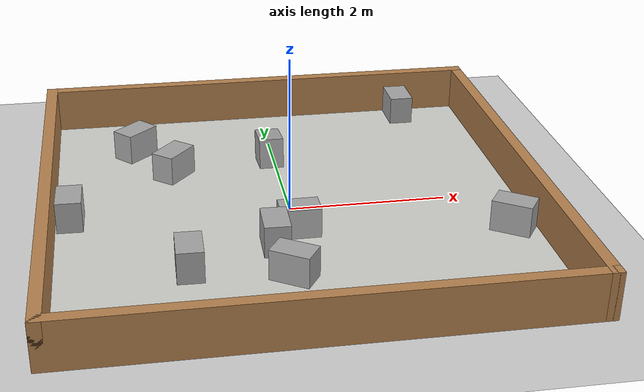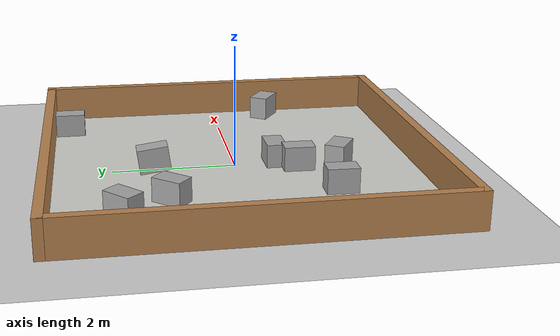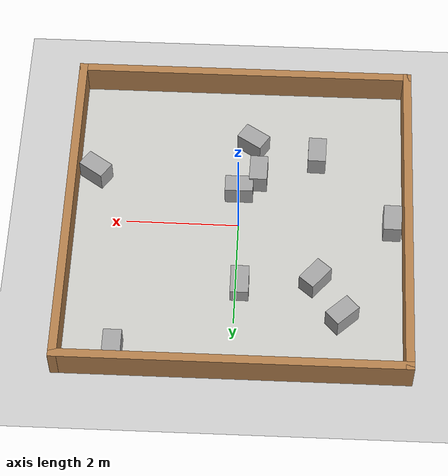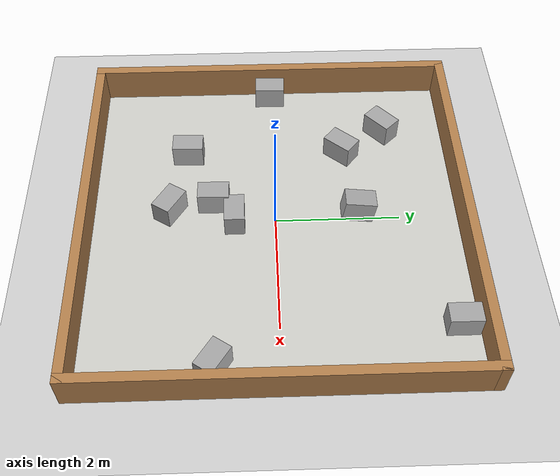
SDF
<sdf version="1.6">
 <world name="default">
  <light name="sun" type="directional">
   <pose>0 0 10 0 -0 0</pose>
   <diffuse>0.8 0.8 0.8 1</diffuse>
   <specular>0.2 0.2 0.2 1</specular>
   <attenuation>
    <range>1000</range>
    <constant>0.9</constant>
    <linear>0.01</linear>
    <quadratic>0.001</quadratic>
   </attenuation>
   <direction>-0.5 0.1 -0.9</direction>
  </light>
  <model name="ground_plane">
   <static>1</static>
   <link name="link">
    <collision name="collision">
     <geometry><plane><normal>0 0 1</normal><size>100 100</size></plane></geometry>
     <surface><friction><ode><mu>100</mu><mu2>50</mu2></ode></friction></surface>
    </collision>
    <visual name="visual">
     <cast_shadows>0</cast_shadows>
     <geometry><plane><normal>0 0 1</normal><size>100 100</size></plane></geometry>
     <material>
      <script><uri>model://media/materials/scripts/gazebo.material</uri><name>Gazebo/Grey</name></script>
     </material>
    </visual>
   </link>
  </model>
  <gravity>0 0 -9.8</gravity>
  <magnetic_field>6e-06 2.3e-05 -4.2e-05</magnetic_field>
  <atmosphere type="adiabatic"/>
  <physics name="default_physics" default="0" type="ode">
   <max_step_size>0.001</max_step_size>
   <real_time_factor>1</real_time_factor>
   <real_time_update_rate>1000</real_time_update_rate>
  </physics>
  <scene><ambient>0.4 0.4 0.4 1</ambient><background>0.7 0.7 0.7 1</background><shadows>1</shadows></scene>
  <spherical_coordinates>
   <surface_model>EARTH_WGS84</surface_model>
   <latitude_deg>0</latitude_deg>
   <longitude_deg>0</longitude_deg>
   <elevation>0</elevation>
   <heading_deg>0</heading_deg>
  </spherical_coordinates>
  <model name="box2">
   <pose>0.011398 -0.650571 0 0 0 -1.56396</pose>
   <static>1</static>
   <link name="body">
    <collision name="collision">
     <geometry><mesh><uri>model://box_2.dae</uri><scale>1 1 1</scale></mesh></geometry>
    </collision>
    <visual name="visual">
     <geometry><mesh><uri>model://box_2.dae</uri><scale>1 1 1</scale></mesh></geometry>
    </visual>
   </link>
  </model>
  <model name="box5_0_clone">
   <link name="body">
    <inertial>
     <mass>1</mass>
     <inertia><ixx>1</ixx><ixy>0</ixy><ixz>0</ixz><iyy>1</iyy><iyz>0</iyz><izz>1</izz></inertia>
    </inertial>
    <visual name="visual">
     <geometry><mesh><uri>model://box_blank.dae</uri><scale>1 1 1</scale></mesh></geometry>
     <material><shader type="vertex"><normal_map>__default__</normal_map></shader></material>
    </visual>
    <collision name="collision">
     <geometry><mesh><uri>model://box_10.dae</uri><scale>1 1 1</scale></mesh></geometry>
     <surface>
      <friction>
       <ode><mu>1</mu><mu2>1</mu2><fdir1>0 0 0</fdir1><slip1>0</slip1><slip2>0</slip2></ode>
       <torsional>
        <coefficient>1</coefficient>
        <patch_radius>0</patch_radius>
        <surface_radius>0</surface_radius>
        <use_patch_radius>1</use_patch_radius>
        <ode><slip>0</slip></ode>
       </torsional>
      </friction>
      <bounce><restitution_coefficient>0</restitution_coefficient><threshold>1e+06</threshold></bounce>
      <contact>
       <collide_without_contact>0</collide_without_contact>
       <collide_without_contact_bitmask>1</collide_without_contact_bitmask>
       <collide_bitmask>1</collide_bitmask>
       <ode>
        <soft_cfm>0</soft_cfm>
        <soft_erp>0.2</soft_erp>
        <kp>1e+13</kp>
        <kd>1</kd>
        <max_vel>0.01</max_vel>
        <min_depth>0</min_depth>
       </ode>
       <bullet>
        <split_impulse>1</split_impulse>
        <split_impulse_penetration_threshold>-0.01</split_impulse_penetration_threshold>
        <soft_cfm>0</soft_cfm>
        <soft_erp>0.2</soft_erp>
        <kp>1e+13</kp>
        <kd>1</kd>
       </bullet>
      </contact>
     </surface>
    </collision>
   </link>
   <static>1</static>
   <pose>-0.212435 -1.68754 0 0 -0 1</pose>
  </model>
  <model name="walls_0">
   <link name="Wall_0">
    <pose>0 -3 0 0 -0 0</pose>
    <visual name="Wall_0_Visual">
     <pose>0 0 0.3 0 -0 0</pose>
     <geometry><box><size>6.15 0.15 0.6</size></box></geometry>
     <material>
      <script><uri>file://media/materials/scripts/gazebo.material</uri><name>Gazebo/Wood</name></script>
      <ambient>1 1 1 1</ambient>
      <diffuse>1 1 1 1</diffuse>
      <specular>0.2 0.2 0.2 1</specular>
      <emissive>0 0 0 1</emissive>
     </material>
    </visual>
    <collision name="Wall_0_Collision">
     <pose>0 0 0.3 0 -0 0</pose>
     <geometry><box><size>6.15 0.15 0.6</size></box></geometry>
     <surface>
      <friction>
       <ode><mu>1</mu><mu2>1</mu2><fdir1>0 0 0</fdir1><slip1>0</slip1><slip2>0</slip2></ode>
       <torsional>
        <coefficient>1</coefficient>
        <patch_radius>0</patch_radius>
        <surface_radius>0</surface_radius>
        <use_patch_radius>1</use_patch_radius>
        <ode><slip>0</slip></ode>
       </torsional>
      </friction>
      <bounce><restitution_coefficient>0</restitution_coefficient><threshold>1e+06</threshold></bounce>
      <contact>
       <collide_without_contact>0</collide_without_contact>
       <collide_without_contact_bitmask>1</collide_without_contact_bitmask>
       <collide_bitmask>1</collide_bitmask>
       <ode>
        <soft_cfm>0</soft_cfm>
        <soft_erp>0.2</soft_erp>
        <kp>1e+13</kp>
        <kd>1</kd>
        <max_vel>0.01</max_vel>
        <min_depth>0</min_depth>
       </ode>
       <bullet>
        <split_impulse>1</split_impulse>
        <split_impulse_penetration_threshold>-0.01</split_impulse_penetration_threshold>
        <soft_cfm>0</soft_cfm>
        <soft_erp>0.2</soft_erp>
        <kp>1e+13</kp>
        <kd>1</kd>
       </bullet>
      </contact>
     </surface>
    </collision>
   </link>
   <link name="Wall_3">
    <pose>3 0 0 0 -0 1.5708</pose>
    <visual name="Wall_3_Visual">
     <pose>0 0 0.3 0 -0 0</pose>
     <geometry><box><size>6.15 0.15 0.6</size></box></geometry>
     <material>
      <script><uri>file://media/materials/scripts/gazebo.material</uri><name>Gazebo/Wood</name></script>
      <ambient>1 1 1 1</ambient>
      <diffuse>1 1 1 1</diffuse>
      <specular>0.2 0.2 0.2 1</specular>
      <emissive>0 0 0 1</emissive>
     </material>
    </visual>
    <collision name="Wall_3_Collision">
     <pose>0 0 0.3 0 -0 0</pose>
     <geometry><box><size>6.15 0.15 0.6</size></box></geometry>
     <surface>
      <friction>
       <ode><mu>1</mu><mu2>1</mu2><fdir1>0 0 0</fdir1><slip1>0</slip1><slip2>0</slip2></ode>
       <torsional>
        <coefficient>1</coefficient>
        <patch_radius>0</patch_radius>
        <surface_radius>0</surface_radius>
        <use_patch_radius>1</use_patch_radius>
        <ode><slip>0</slip></ode>
       </torsional>
      </friction>
      <bounce><restitution_coefficient>0</restitution_coefficient><threshold>1e+06</threshold></bounce>
      <contact>
       <collide_without_contact>0</collide_without_contact>
       <collide_without_contact_bitmask>1</collide_without_contact_bitmask>
       <collide_bitmask>1</collide_bitmask>
       <ode>
        <soft_cfm>0</soft_cfm>
        <soft_erp>0.2</soft_erp>
        <kp>1e+13</kp>
        <kd>1</kd>
        <max_vel>0.01</max_vel>
        <min_depth>0</min_depth>
       </ode>
       <bullet>
        <split_impulse>1</split_impulse>
        <split_impulse_penetration_threshold>-0.01</split_impulse_penetration_threshold>
        <soft_cfm>0</soft_cfm>
        <soft_erp>0.2</soft_erp>
        <kp>1e+13</kp>
        <kd>1</kd>
       </bullet>
      </contact>
     </surface>
    </collision>
   </link>
   <link name="Wall_5">
    <pose>0 3 0 0 -0 3.14159</pose>
    <visual name="Wall_5_Visual">
     <pose>0 0 0.3 0 -0 0</pose>
     <geometry><box><size>6.15 0.15 0.6</size></box></geometry>
     <material>
      <script><uri>file://media/materials/scripts/gazebo.material</uri><name>Gazebo/Wood</name></script>
      <ambient>1 1 1 1</ambient>
      <diffuse>1 1 1 1</diffuse>
      <specular>0.2 0.2 0.2 1</specular>
      <emissive>0 0 0 1</emissive>
     </material>
    </visual>
    <collision name="Wall_5_Collision">
     <pose>0 0 0.3 0 -0 0</pose>
     <geometry><box><size>6.15 0.15 0.6</size></box></geometry>
     <surface>
      <friction>
       <ode><mu>1</mu><mu2>1</mu2><fdir1>0 0 0</fdir1><slip1>0</slip1><slip2>0</slip2></ode>
       <torsional>
        <coefficient>1</coefficient>
        <patch_radius>0</patch_radius>
        <surface_radius>0</surface_radius>
        <use_patch_radius>1</use_patch_radius>
        <ode><slip>0</slip></ode>
       </torsional>
      </friction>
      <bounce><restitution_coefficient>0</restitution_coefficient><threshold>1e+06</threshold></bounce>
      <contact>
       <collide_without_contact>0</collide_without_contact>
       <collide_without_contact_bitmask>1</collide_without_contact_bitmask>
       <collide_bitmask>1</collide_bitmask>
       <ode>
        <soft_cfm>0</soft_cfm>
        <soft_erp>0.2</soft_erp>
        <kp>1e+13</kp>
        <kd>1</kd>
        <max_vel>0.01</max_vel>
        <min_depth>0</min_depth>
       </ode>
       <bullet>
        <split_impulse>1</split_impulse>
        <split_impulse_penetration_threshold>-0.01</split_impulse_penetration_threshold>
        <soft_cfm>0</soft_cfm>
        <soft_erp>0.2</soft_erp>
        <kp>1e+13</kp>
        <kd>1</kd>
       </bullet>
      </contact>
     </surface>
    </collision>
   </link>
   <link name="Wall_6">
    <pose>-3 0 0 0 0 -1.5708</pose>
    <visual name="Wall_6_Visual">
     <pose>0 0 0.3 0 -0 0</pose>
     <geometry><box><size>6.15 0.15 0.6</size></box></geometry>
     <material>
      <script><uri>file://media/materials/scripts/gazebo.material</uri><name>Gazebo/Wood</name></script>
      <ambient>1 1 1 1</ambient>
      <diffuse>1 1 1 1</diffuse>
      <specular>0.2 0.2 0.2 1</specular>
      <emissive>0 0 0 1</emissive>
     </material>
    </visual>
    <collision name="Wall_6_Collision">
     <pose>0 0 0.3 0 -0 0</pose>
     <geometry><box><size>6.15 0.15 0.6</size></box></geometry>
     <surface>
      <friction>
       <ode><mu>1</mu><mu2>1</mu2><fdir1>0 0 0</fdir1><slip1>0</slip1><slip2>0</slip2></ode>
       <torsional>
        <coefficient>1</coefficient>
        <patch_radius>0</patch_radius>
        <surface_radius>0</surface_radius>
        <use_patch_radius>1</use_patch_radius>
        <ode><slip>0</slip></ode>
       </torsional>
      </friction>
      <bounce><restitution_coefficient>0</restitution_coefficient><threshold>1e+06</threshold></bounce>
      <contact>
       <collide_without_contact>0</collide_without_contact>
       <collide_without_contact_bitmask>1</collide_without_contact_bitmask>
       <collide_bitmask>1</collide_bitmask>
       <ode>
        <soft_cfm>0</soft_cfm>
        <soft_erp>0.2</soft_erp>
        <kp>1e+13</kp>
        <kd>1</kd>
        <max_vel>0.01</max_vel>
        <min_depth>0</min_depth>
       </ode>
       <bullet>
        <split_impulse>1</split_impulse>
        <split_impulse_penetration_threshold>-0.01</split_impulse_penetration_threshold>
        <soft_cfm>0</soft_cfm>
        <soft_erp>0.2</soft_erp>
        <kp>1e+13</kp>
        <kd>1</kd>
       </bullet>
      </contact>
     </surface>
    </collision>
   </link>
   <static>1</static>
   <pose>-0.001531 0.00773 0 0 -0 0</pose>
  </model>
  <model name="floor">
   <pose>-0.055185 0.053727 0 0 -0 0</pose>
   <link name="Wall_5">
    <collision name="Wall_5_Collision">
     <geometry><box><size>6.01 6 0.015</size></box></geometry>
     <pose>0 0 0.0075 0 -0 0</pose>
    </collision>
    <visual name="Wall_5_Visual">
     <pose>0 0 0.0075 0 -0 0</pose>
     <geometry><box><size>6.01 6 0.015</size></box></geometry>
     <material>
      <script><uri>file://media/materials/scripts/gazebo.material</uri><name>Gazebo/CeilingTiled</name></script>
      <ambient>1 1 1 1</ambient>
     </material>
    </visual>
   </link>
   <static>1</static>
  </model>
  <model name="box10_clone_clone">
   <link name="body">
    <inertial>
     <mass>1</mass>
     <inertia><ixx>1</ixx><ixy>0</ixy><ixz>0</ixz><iyy>1</iyy><iyz>0</iyz><izz>1</izz></inertia>
    </inertial>
    <visual name="visual">
     <geometry><mesh><uri>model://box_10.dae</uri><scale>1 1 1</scale></mesh></geometry>
     <material><shader type="vertex"><normal_map>__default__</normal_map></shader></material>
    </visual>
    <collision name="collision">
     <geometry><mesh><uri>model://box_10.dae</uri><scale>1 1 1</scale></mesh></geometry>
     <surface>
      <friction>
       <ode><mu>1</mu><mu2>1</mu2><fdir1>0 0 0</fdir1><slip1>0</slip1><slip2>0</slip2></ode>
       <torsional>
        <coefficient>1</coefficient>
        <patch_radius>0</patch_radius>
        <surface_radius>0</surface_radius>
        <use_patch_radius>1</use_patch_radius>
        <ode><slip>0</slip></ode>
       </torsional>
      </friction>
      <bounce><restitution_coefficient>0</restitution_coefficient><threshold>1e+06</threshold></bounce>
      <contact>
       <collide_without_contact>0</collide_without_contact>
       <collide_without_contact_bitmask>1</collide_without_contact_bitmask>
       <collide_bitmask>1</collide_bitmask>
       <ode>
        <soft_cfm>0</soft_cfm>
        <soft_erp>0.2</soft_erp>
        <kp>1e+13</kp>
        <kd>1</kd>
        <max_vel>0.01</max_vel>
        <min_depth>0</min_depth>
       </ode>
       <bullet>
        <split_impulse>1</split_impulse>
        <split_impulse_penetration_threshold>-0.01</split_impulse_penetration_threshold>
        <soft_cfm>0</soft_cfm>
        <soft_erp>0.2</soft_erp>
        <kp>1e+13</kp>
        <kd>1</kd>
       </bullet>
      </contact>
     </surface>
    </collision>
   </link>
   <static>1</static>
   <pose>-1.39104 1.15782 0 0 0 -0.7</pose>
  </model>
  <model name="box8">
   <link name="body">
    <inertial>
     <mass>1</mass>
     <inertia><ixx>1</ixx><ixy>0</ixy><ixz>0</ixz><iyy>1</iyy><iyz>0</iyz><izz>1</izz></inertia>
    </inertial>
    <visual name="visual">
     <geometry><mesh><uri>model://box_8.dae</uri><scale>1 1 1</scale></mesh></geometry>
     <material><shader type="vertex"><normal_map>__default__</normal_map></shader></material>
    </visual>
    <collision name="collision">
     <geometry><mesh><uri>model://box_10.dae</uri><scale>1 1 1</scale></mesh></geometry>
     <surface>
      <friction>
       <ode><mu>1</mu><mu2>1</mu2><fdir1>0 0 0</fdir1><slip1>0</slip1><slip2>0</slip2></ode>
       <torsional>
        <coefficient>1</coefficient>
        <patch_radius>0</patch_radius>
        <surface_radius>0</surface_radius>
        <use_patch_radius>1</use_patch_radius>
        <ode><slip>0</slip></ode>
       </torsional>
      </friction>
      <bounce><restitution_coefficient>0</restitution_coefficient><threshold>1e+06</threshold></bounce>
      <contact>
       <collide_without_contact>0</collide_without_contact>
       <collide_without_contact_bitmask>1</collide_without_contact_bitmask>
       <collide_bitmask>1</collide_bitmask>
       <ode>
        <soft_cfm>0</soft_cfm>
        <soft_erp>0.2</soft_erp>
        <kp>1e+13</kp>
        <kd>1</kd>
        <max_vel>0.01</max_vel>
        <min_depth>0</min_depth>
       </ode>
       <bullet>
        <split_impulse>1</split_impulse>
        <split_impulse_penetration_threshold>-0.01</split_impulse_penetration_threshold>
        <soft_cfm>0</soft_cfm>
        <soft_erp>0.2</soft_erp>
        <kp>1e+13</kp>
        <kd>1</kd>
       </bullet>
      </contact>
     </surface>
    </collision>
   </link>
   <static>1</static>
   <pose>-0.081055 1.35814 0.441531 3.00792 -0 0</pose>
  </model>
  <model name="box11">
   <link name="body">
    <inertial>
     <mass>1</mass>
     <inertia><ixx>1</ixx><ixy>0</ixy><ixz>0</ixz><iyy>1</iyy><iyz>0</iyz><izz>1</izz></inertia>
    </inertial>
    <visual name="visual">
     <geometry><mesh><uri>model://box_11.dae</uri><scale>1 1 1</scale></mesh></geometry>
     <material><shader type="vertex"><normal_map>__default__</normal_map></shader></material>
    </visual>
    <collision name="collision">
     <geometry><mesh><uri>model://box_10.dae</uri><scale>1 1 1</scale></mesh></geometry>
     <surface>
      <friction>
       <ode><mu>1</mu><mu2>1</mu2><fdir1>0 0 0</fdir1><slip1>0</slip1><slip2>0</slip2></ode>
       <torsional>
        <coefficient>1</coefficient>
        <patch_radius>0</patch_radius>
        <surface_radius>0</surface_radius>
        <use_patch_radius>1</use_patch_radius>
        <ode><slip>0</slip></ode>
       </torsional>
      </friction>
      <bounce><restitution_coefficient>0</restitution_coefficient><threshold>1e+06</threshold></bounce>
      <contact>
       <collide_without_contact>0</collide_without_contact>
       <collide_without_contact_bitmask>1</collide_without_contact_bitmask>
       <collide_bitmask>1</collide_bitmask>
       <ode>
        <soft_cfm>0</soft_cfm>
        <soft_erp>0.2</soft_erp>
        <kp>1e+13</kp>
        <kd>1</kd>
        <max_vel>0.01</max_vel>
        <min_depth>0</min_depth>
       </ode>
       <bullet>
        <split_impulse>1</split_impulse>
        <split_impulse_penetration_threshold>-0.01</split_impulse_penetration_threshold>
        <soft_cfm>0</soft_cfm>
        <soft_erp>0.2</soft_erp>
        <kp>1e+13</kp>
        <kd>1</kd>
       </bullet>
      </contact>
     </surface>
    </collision>
   </link>
   <static>1</static>
   <pose>-1.86583 1.88389 0.016869 0 0 -0.820908</pose>
  </model>
  <model name="box11_clone">
   <link name="body">
    <inertial>
     <mass>1</mass>
     <inertia><ixx>1</ixx><ixy>0</ixy><ixz>0</ixz><iyy>1</iyy><iyz>0</iyz><izz>1</izz></inertia>
    </inertial>
    <visual name="visual">
     <geometry><mesh><uri>model://box_11.dae</uri><scale>1 1 1</scale></mesh></geometry>
     <material><shader type="vertex"><normal_map>__default__</normal_map></shader></material>
    </visual>
    <collision name="collision">
     <geometry><mesh><uri>model://box_10.dae</uri><scale>1 1 1</scale></mesh></geometry>
     <surface>
      <friction>
       <ode><mu>1</mu><mu2>1</mu2><fdir1>0 0 0</fdir1><slip1>0</slip1><slip2>0</slip2></ode>
       <torsional>
        <coefficient>1</coefficient>
        <patch_radius>0</patch_radius>
        <surface_radius>0</surface_radius>
        <use_patch_radius>1</use_patch_radius>
        <ode><slip>0</slip></ode>
       </torsional>
      </friction>
      <bounce><restitution_coefficient>0</restitution_coefficient><threshold>1e+06</threshold></bounce>
      <contact>
       <collide_without_contact>0</collide_without_contact>
       <collide_without_contact_bitmask>1</collide_without_contact_bitmask>
       <collide_bitmask>1</collide_bitmask>
       <ode>
        <soft_cfm>0</soft_cfm>
        <soft_erp>0.2</soft_erp>
        <kp>1e+13</kp>
        <kd>1</kd>
        <max_vel>0.01</max_vel>
        <min_depth>0</min_depth>
       </ode>
       <bullet>
        <split_impulse>1</split_impulse>
        <split_impulse_penetration_threshold>-0.01</split_impulse_penetration_threshold>
        <soft_cfm>0</soft_cfm>
        <soft_erp>0.2</soft_erp>
        <kp>1e+13</kp>
        <kd>1</kd>
       </bullet>
      </contact>
     </surface>
    </collision>
   </link>
   <static>1</static>
   <pose>-0.327817 -0.983766 0.0298 0 0 -0.021358</pose>
  </model>
  <model name="box14">
   <link name="body">
    <inertial>
     <mass>1</mass>
     <inertia><ixx>1</ixx><ixy>0</ixy><ixz>0</ixz><iyy>1</iyy><iyz>0</iyz><izz>1</izz></inertia>
    </inertial>
    <visual name="visual">
     <geometry><mesh><uri>model://box_14.dae</uri><scale>1 1 1</scale></mesh></geometry>
     <material><shader type="vertex"><normal_map>__default__</normal_map></shader></material>
    </visual>
    <collision name="collision">
     <geometry><mesh><uri>model://box_10.dae</uri><scale>1 1 1</scale></mesh></geometry>
     <surface>
      <friction>
       <ode><mu>1</mu><mu2>1</mu2><fdir1>0 0 0</fdir1><slip1>0</slip1><slip2>0</slip2></ode>
       <torsional>
        <coefficient>1</coefficient>
        <patch_radius>0</patch_radius>
        <surface_radius>0</surface_radius>
        <use_patch_radius>1</use_patch_radius>
        <ode><slip>0</slip></ode>
       </torsional>
      </friction>
      <bounce><restitution_coefficient>0</restitution_coefficient><threshold>1e+06</threshold></bounce>
      <contact>
       <collide_without_contact>0</collide_without_contact>
       <collide_without_contact_bitmask>1</collide_without_contact_bitmask>
       <collide_bitmask>1</collide_bitmask>
       <ode>
        <soft_cfm>0</soft_cfm>
        <soft_erp>0.2</soft_erp>
        <kp>1e+13</kp>
        <kd>1</kd>
        <max_vel>0.01</max_vel>
        <min_depth>0</min_depth>
       </ode>
       <bullet>
        <split_impulse>1</split_impulse>
        <split_impulse_penetration_threshold>-0.01</split_impulse_penetration_threshold>
        <soft_cfm>0</soft_cfm>
        <soft_erp>0.2</soft_erp>
        <kp>1e+13</kp>
        <kd>1</kd>
       </bullet>
      </contact>
     </surface>
    </collision>
   </link>
   <static>1</static>
   <pose>2.61496 -0.952463 0.014699 0 -0 0.975365</pose>
  </model>
  <model name="box15">
   <link name="body">
    <inertial>
     <mass>1</mass>
     <inertia><ixx>1</ixx><ixy>0</ixy><ixz>0</ixz><iyy>1</iyy><iyz>0</iyz><izz>1</izz></inertia>
    </inertial>
    <visual name="visual">
     <geometry><mesh><uri>model://box_15.dae</uri><scale>1 1 1</scale></mesh></geometry>
     <material><shader type="vertex"><normal_map>__default__</normal_map></shader></material>
    </visual>
    <collision name="collision">
     <geometry><mesh><uri>model://box_10.dae</uri><scale>1 1 1</scale></mesh></geometry>
     <surface>
      <friction>
       <ode><mu>1</mu><mu2>1</mu2><fdir1>0 0 0</fdir1><slip1>0</slip1><slip2>0</slip2></ode>
       <torsional>
        <coefficient>1</coefficient>
        <patch_radius>0</patch_radius>
        <surface_radius>0</surface_radius>
        <use_patch_radius>1</use_patch_radius>
        <ode><slip>0</slip></ode>
       </torsional>
      </friction>
      <bounce><restitution_coefficient>0</restitution_coefficient><threshold>1e+06</threshold></bounce>
      <contact>
       <collide_without_contact>0</collide_without_contact>
       <collide_without_contact_bitmask>1</collide_without_contact_bitmask>
       <collide_bitmask>1</collide_bitmask>
       <ode>
        <soft_cfm>0</soft_cfm>
        <soft_erp>0.2</soft_erp>
        <kp>1e+13</kp>
        <kd>1</kd>
        <max_vel>0.01</max_vel>
        <min_depth>0</min_depth>
       </ode>
       <bullet>
        <split_impulse>1</split_impulse>
        <split_impulse_penetration_threshold>-0.01</split_impulse_penetration_threshold>
        <soft_cfm>0</soft_cfm>
        <soft_erp>0.2</soft_erp>
        <kp>1e+13</kp>
        <kd>1</kd>
       </bullet>
      </contact>
     </surface>
    </collision>
   </link>
   <static>1</static>
   <pose>2.03641 2.66799 0 0 -0 0</pose>
  </model>
  <model name="box11_clone_clone">
   <link name="body">
    <inertial>
     <mass>1</mass>
     <inertia><ixx>1</ixx><ixy>0</ixy><ixz>0</ixz><iyy>1</iyy><iyz>0</iyz><izz>1</izz></inertia>
    </inertial>
    <visual name="visual">
     <geometry><mesh><uri>model://box_5.dae</uri><scale>1 1 1</scale></mesh></geometry>
     <material><shader type="vertex"><normal_map>__default__</normal_map></shader></material>
    </visual>
    <collision name="collision">
     <geometry><mesh><uri>model://box_10.dae</uri><scale>1 1 1</scale></mesh></geometry>
     <surface>
      <friction>
       <ode><mu>1</mu><mu2>1</mu2><fdir1>0 0 0</fdir1><slip1>0</slip1><slip2>0</slip2></ode>
       <torsional>
        <coefficient>1</coefficient>
        <patch_radius>0</patch_radius>
        <surface_radius>0</surface_radius>
        <use_patch_radius>1</use_patch_radius>
        <ode><slip>0</slip></ode>
       </torsional>
      </friction>
      <bounce><restitution_coefficient>0</restitution_coefficient><threshold>1e+06</threshold></bounce>
      <contact>
       <collide_without_contact>0</collide_without_contact>
       <collide_without_contact_bitmask>1</collide_without_contact_bitmask>
       <collide_bitmask>1</collide_bitmask>
       <ode>
        <soft_cfm>0</soft_cfm>
        <soft_erp>0.2</soft_erp>
        <kp>1e+13</kp>
        <kd>1</kd>
        <max_vel>0.01</max_vel>
        <min_depth>0</min_depth>
       </ode>
       <bullet>
        <split_impulse>1</split_impulse>
        <split_impulse_penetration_threshold>-0.01</split_impulse_penetration_threshold>
        <soft_cfm>0</soft_cfm>
        <soft_erp>0.2</soft_erp>
        <kp>1e+13</kp>
        <kd>1</kd>
       </bullet>
      </contact>
     </surface>
    </collision>
   </link>
   <static>1</static>
   <pose>-1.37568 -1.42196 0.0298 0 0 -0.021358</pose>
  </model>
  <model name="box11_clone_clone_0">
   <link name="body">
    <inertial>
     <mass>1</mass>
     <inertia><ixx>1</ixx><ixy>0</ixy><ixz>0</ixz><iyy>1</iyy><iyz>0</iyz><izz>1</izz></inertia>
    </inertial>
    <visual name="visual">
     <geometry><mesh><uri>model://box_5.dae</uri><scale>1 1 1</scale></mesh></geometry>
     <material><shader type="vertex"><normal_map>__default__</normal_map></shader></material>
    </visual>
    <collision name="collision">
     <geometry><mesh><uri>model://box_10.dae</uri><scale>1 1 1</scale></mesh></geometry>
     <surface>
      <friction>
       <ode><mu>1</mu><mu2>1</mu2><fdir1>0 0 0</fdir1><slip1>0</slip1><slip2>0</slip2></ode>
       <torsional>
        <coefficient>1</coefficient>
        <patch_radius>0</patch_radius>
        <surface_radius>0</surface_radius>
        <use_patch_radius>1</use_patch_radius>
        <ode><slip>0</slip></ode>
       </torsional>
      </friction>
      <bounce><restitution_coefficient>0</restitution_coefficient><threshold>1e+06</threshold></bounce>
      <contact>
       <collide_without_contact>0</collide_without_contact>
       <collide_without_contact_bitmask>1</collide_without_contact_bitmask>
       <collide_bitmask>1</collide_bitmask>
       <ode>
        <soft_cfm>0</soft_cfm>
        <soft_erp>0.2</soft_erp>
        <kp>1e+13</kp>
        <kd>1</kd>
        <max_vel>0.01</max_vel>
        <min_depth>0</min_depth>
       </ode>
       <bullet>
        <split_impulse>1</split_impulse>
        <split_impulse_penetration_threshold>-0.01</split_impulse_penetration_threshold>
        <soft_cfm>0</soft_cfm>
        <soft_erp>0.2</soft_erp>
        <kp>1e+13</kp>
        <kd>1</kd>
       </bullet>
      </contact>
     </surface>
    </collision>
   </link>
   <static>1</static>
   <pose>-2.73643 -0.017543 0.0298 0 0 -0.021358</pose>
  </model>
 </world>
</sdf>
